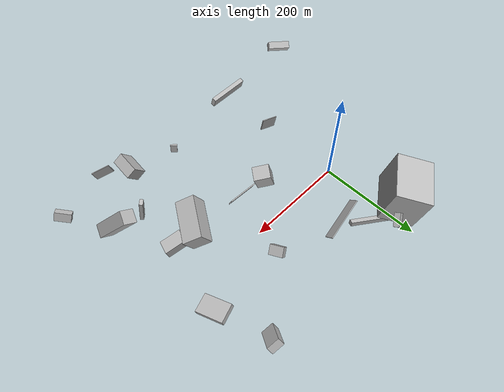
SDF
<sdf version="1.6">
 <world name="default">
  <scene>
   <sky><clouds><speed>12</speed></clouds></sky>
   <ambient>0.4 0.4 0.4 1</ambient>
   <background>0.7 0.7 0.7 1</background>
   <shadows>1</shadows>
  </scene>
  <gravity>0 0 -9.8066</gravity>
  <magnetic_field>6e-06 2.3e-05 -4.2e-05</magnetic_field>
  <physics default="0" name="default_physics" type="ode">
   <ode>
    <solver>
     <type>quick</type>
     <iters>10</iters>
     <sor>1.0</sor>
     <use_dynamic_moi_rescaling>0</use_dynamic_moi_rescaling>
    </solver>
    <constraints>
     <cfm>0</cfm>
     <erp>0.2</erp>
     <contact_max_correcting_vel>100</contact_max_correcting_vel>
     <contact_surface_layer>0.001</contact_surface_layer>
    </constraints>
   </ode>
   <max_step_size>0.004</max_step_size>
   <real_time_factor>1</real_time_factor>
   <real_time_update_rate>250</real_time_update_rate>
  </physics>
  <light name="sun" type="directional">
   <pose>0 0 10 0 0 0</pose>
   <diffuse>0.8 0.8 0.8 1</diffuse>
   <specular>0.2 0.2 0.2 1</specular>
   <attenuation>
    <range>1000</range>
    <constant>0.9</constant>
    <linear>0.01</linear>
    <quadratic>0.001</quadratic>
   </attenuation>
   <direction>-0.5 0.1 -0.9</direction>
  </light>
  <model name="building_1">
   <static>0</static>
   <pose>18.604189638630377 -270.0084801657965 37.75572804535589 0.30387462638447327 -0.0481927165799514 3.1163604716716895</pose>
   <link name="link">
    <gravity>0</gravity>
    <pose>0 0 11.0 0 0 0</pose>
    <collision name="collision"><geometry><box><size>80 9 22</size></box></geometry></collision>
    <visual name="visual">
     <cast_shadows>0</cast_shadows>
     <geometry><box><size>80 9 22</size></box></geometry>
     <material>
      <script>
       <uri>model://HANNAS_wall/materials/scripts</uri>
       <uri>model://HANNAS_wall/materials/textures</uri>
       <name>vrc/HANNAS_wall</name>
      </script>
     </material>
    </visual>
   </link>
  </model>
  <model name="building_2">
   <static>0</static>
   <pose>30.688145117430764 197.96346014661495 150.86888458859363 1.3570878151469867 0.06663464740510784 0.5989259954072047</pose>
   <link name="link">
    <gravity>0</gravity>
    <pose>0 0 30.5 0 0 0</pose>
    <collision name="collision"><geometry><box><size>80 74 61</size></box></geometry></collision>
    <visual name="visual">
     <cast_shadows>0</cast_shadows>
     <geometry><box><size>80 74 61</size></box></geometry>
     <material>
      <script>
       <uri>model://HANNAS_wall/materials/scripts</uri>
       <uri>model://HANNAS_wall/materials/textures</uri>
       <name>vrc/HANNAS_wall</name>
      </script>
     </material>
    </visual>
   </link>
  </model>
  <model name="building_3">
   <static>0</static>
   <pose>240.6456983925743 60.61529015062554 69.1304467071159 -1.1534007134463742 -0.8415070122899688 0.014404276636370995</pose>
   <link name="link">
    <gravity>0</gravity>
    <pose>0 0 13.0 0 0 0</pose>
    <collision name="collision"><geometry><box><size>11 18 26</size></box></geometry></collision>
    <visual name="visual">
     <cast_shadows>0</cast_shadows>
     <geometry><box><size>11 18 26</size></box></geometry>
     <material>
      <script>
       <uri>model://HANNAS_wall/materials/scripts</uri>
       <uri>model://HANNAS_wall/materials/textures</uri>
       <name>vrc/HANNAS_wall</name>
      </script>
     </material>
    </visual>
   </link>
  </model>
  <model name="building_4">
   <static>0</static>
   <pose>378.05804633108556 -165.2748386116931 56.75683413762468 -0.6959533781683468 0.8408317383026904 -0.974673879627191</pose>
   <link name="link">
    <gravity>0</gravity>
    <pose>0 0 13.5 0 0 0</pose>
    <collision name="collision"><geometry><box><size>80 25 27</size></box></geometry></collision>
    <visual name="visual">
     <cast_shadows>0</cast_shadows>
     <geometry><box><size>80 25 27</size></box></geometry>
     <material>
      <script>
       <uri>model://HANNAS_wall/materials/scripts</uri>
       <uri>model://HANNAS_wall/materials/textures</uri>
       <name>vrc/HANNAS_wall</name>
      </script>
     </material>
    </visual>
   </link>
  </model>
  <model name="building_5">
   <static>0</static>
   <pose>284.7893810707567 -249.2874523724937 65.90239303720215 2.9458199483058385 -0.9151571844170147 0.08514235196801988</pose>
   <link name="link">
    <gravity>0</gravity>
    <pose>0 0 11.0 0 0 0</pose>
    <collision name="collision"><geometry><box><size>35 44 22</size></box></geometry></collision>
    <visual name="visual">
     <cast_shadows>0</cast_shadows>
     <geometry><box><size>35 44 22</size></box></geometry>
     <material>
      <script>
       <uri>model://HANNAS_wall/materials/scripts</uri>
       <uri>model://HANNAS_wall/materials/textures</uri>
       <name>vrc/HANNAS_wall</name>
      </script>
     </material>
    </visual>
   </link>
  </model>
  <model name="building_6">
   <static>0</static>
   <pose>269.06665822878904 -109.85784908698997 63.14248282486653 1.902361760057284 1.0381785404034445 2.8557191163802047</pose>
   <link name="link">
    <gravity>0</gravity>
    <pose>0 0 40.0 0 0 0</pose>
    <collision name="collision"><geometry><box><size>38 38 80</size></box></geometry></collision>
    <visual name="visual">
     <cast_shadows>0</cast_shadows>
     <geometry><box><size>38 38 80</size></box></geometry>
     <material>
      <script>
       <uri>model://HANNAS_wall/materials/scripts</uri>
       <uri>model://HANNAS_wall/materials/textures</uri>
       <name>vrc/HANNAS_wall</name>
      </script>
     </material>
    </visual>
   </link>
  </model>
  <model name="building_7">
   <static>0</static>
   <pose>342.47269009472393 -63.005780804954135 43.068845665374695 -1.666073401515065 -0.2996980115905921 2.855761567001935</pose>
   <link name="link">
    <gravity>0</gravity>
    <pose>0 0 13.5 0 0 0</pose>
    <collision name="collision"><geometry><box><size>40 16 27</size></box></geometry></collision>
    <visual name="visual">
     <cast_shadows>0</cast_shadows>
     <geometry><box><size>40 16 27</size></box></geometry>
     <material>
      <script>
       <uri>model://HANNAS_wall/materials/scripts</uri>
       <uri>model://HANNAS_wall/materials/textures</uri>
       <name>vrc/HANNAS_wall</name>
      </script>
     </material>
    </visual>
   </link>
  </model>
  <model name="building_8">
   <static>0</static>
   <pose>101.9159934510655 200.9609168994587 137.87758411553497 0.6820311299519702 -0.8234654093877971 -0.22915649580009487</pose>
   <link name="link">
    <gravity>0</gravity>
    <pose>0 0 11.5 0 0 0</pose>
    <collision name="collision"><geometry><box><size>10 10 23</size></box></geometry></collision>
    <visual name="visual">
     <cast_shadows>0</cast_shadows>
     <geometry><box><size>10 10 23</size></box></geometry>
     <material>
      <script>
       <uri>model://HANNAS_wall/materials/scripts</uri>
       <uri>model://HANNAS_wall/materials/textures</uri>
       <name>vrc/HANNAS_wall</name>
      </script>
     </material>
    </visual>
   </link>
  </model>
  <model name="building_9">
   <static>0</static>
   <pose>339.0298478660873 -270.61056714332847 65.87197125042805 1.7713322131411309 -1.123327893844555 -0.7863585861075301</pose>
   <link name="link">
    <gravity>0</gravity>
    <pose>0 0 1.0 0 0 0</pose>
    <collision name="collision"><geometry><box><size>18 37 2</size></box></geometry></collision>
    <visual name="visual">
     <cast_shadows>0</cast_shadows>
     <geometry><box><size>18 37 2</size></box></geometry>
     <material>
      <script>
       <uri>model://HANNAS_wall/materials/scripts</uri>
       <uri>model://HANNAS_wall/materials/textures</uri>
       <name>vrc/HANNAS_wall</name>
      </script>
     </material>
    </visual>
   </link>
  </model>
  <model name="building_10">
   <static>0</static>
   <pose>112.91844575121495 -53.76741730868886 47.53538090463881 -2.2337291274159448 1.186720224399533 -2.9025125833095666</pose>
   <link name="link">
    <gravity>0</gravity>
    <pose>0 0 16.0 0 0 0</pose>
    <collision name="collision"><geometry><box><size>47 27 32</size></box></geometry></collision>
    <visual name="visual">
     <cast_shadows>0</cast_shadows>
     <geometry><box><size>47 27 32</size></box></geometry>
     <material>
      <script>
       <uri>model://HANNAS_wall/materials/scripts</uri>
       <uri>model://HANNAS_wall/materials/textures</uri>
       <name>vrc/HANNAS_wall</name>
      </script>
     </material>
    </visual>
   </link>
  </model>
  <model name="building_11">
   <static>0</static>
   <pose>436.6672695449815 -266.65011679521575 37.5811105005821 -0.4329931712633271 1.0430514955658077 0.3730614236580791</pose>
   <link name="link">
    <gravity>0</gravity>
    <pose>0 0 7.0 0 0 0</pose>
    <collision name="collision"><geometry><box><size>17 31 14</size></box></geometry></collision>
    <visual name="visual">
     <cast_shadows>0</cast_shadows>
     <geometry><box><size>17 31 14</size></box></geometry>
     <material>
      <script>
       <uri>model://HANNAS_wall/materials/scripts</uri>
       <uri>model://HANNAS_wall/materials/textures</uri>
       <name>vrc/HANNAS_wall</name>
      </script>
     </material>
    </visual>
   </link>
  </model>
  <model name="building_12">
   <static>0</static>
   <pose>340.8051517729186 -160.03769101588412 52.25558678833531 -1.5758405711902939 0.08935144183954247 2.317187394967973</pose>
   <link name="link">
    <gravity>0</gravity>
    <pose>0 0 6.0 0 0 0</pose>
    <collision name="collision"><geometry><box><size>7 49 12</size></box></geometry></collision>
    <visual name="visual">
     <cast_shadows>0</cast_shadows>
     <geometry><box><size>7 49 12</size></box></geometry>
     <material>
      <script>
       <uri>model://HANNAS_wall/materials/scripts</uri>
       <uri>model://HANNAS_wall/materials/textures</uri>
       <name>vrc/HANNAS_wall</name>
      </script>
     </material>
    </visual>
   </link>
  </model>
  <model name="building_13">
   <static>0</static>
   <pose>365.84037237267296 66.48093948667297 74.92205302035771 -2.030527655350348 -1.2600740458496698 -0.837976489881569</pose>
   <link name="link">
    <gravity>0</gravity>
    <pose>0 0 16.5 0 0 0</pose>
    <collision name="collision"><geometry><box><size>9 52 33</size></box></geometry></collision>
    <visual name="visual">
     <cast_shadows>0</cast_shadows>
     <geometry><box><size>9 52 33</size></box></geometry>
     <material>
      <script>
       <uri>model://HANNAS_wall/materials/scripts</uri>
       <uri>model://HANNAS_wall/materials/textures</uri>
       <name>vrc/HANNAS_wall</name>
      </script>
     </material>
    </visual>
   </link>
  </model>
  <model name="building_14">
   <static>0</static>
   <pose>182.43758265213867 -67.00600293208723 36.84645638245855 -0.14469185533208254 -0.4324769613471923 -1.620153634275107</pose>
   <link name="link">
    <gravity>0</gravity>
    <pose>0 0 14.5 0 0 0</pose>
    <collision name="collision"><geometry><box><size>2 55 29</size></box></geometry></collision>
    <visual name="visual">
     <cast_shadows>0</cast_shadows>
     <geometry><box><size>2 55 29</size></box></geometry>
     <material>
      <script>
       <uri>model://HANNAS_wall/materials/scripts</uri>
       <uri>model://HANNAS_wall/materials/textures</uri>
       <name>vrc/HANNAS_wall</name>
      </script>
     </material>
    </visual>
   </link>
  </model>
  <model name="building_15">
   <static>0</static>
   <pose>53.23277416021925 135.62835347243558 24.701866979519323 0.1968522124248772 0.1874287584197051 -2.042946493211146</pose>
   <link name="link">
    <gravity>0</gravity>
    <pose>0 0 4.0 0 0 0</pose>
    <collision name="collision"><geometry><box><size>9 80 8</size></box></geometry></collision>
    <visual name="visual">
     <cast_shadows>0</cast_shadows>
     <geometry><box><size>9 80 8</size></box></geometry>
     <material>
      <script>
       <uri>model://HANNAS_wall/materials/scripts</uri>
       <uri>model://HANNAS_wall/materials/textures</uri>
       <name>vrc/HANNAS_wall</name>
      </script>
     </material>
    </visual>
   </link>
  </model>
  <model name="building_16">
   <static>0</static>
   <pose>-56.542073081391706 107.3574265243481 48.2557149602277 -1.533510142786585 -1.0366454018699554 -1.1748193758460783</pose>
   <link name="link">
    <gravity>0</gravity>
    <pose>0 0 37.0 0 0 0</pose>
    <collision name="collision"><geometry><box><size>35 2 74</size></box></geometry></collision>
    <visual name="visual">
     <cast_shadows>0</cast_shadows>
     <geometry><box><size>35 2 74</size></box></geometry>
     <material>
      <script>
       <uri>model://HANNAS_wall/materials/scripts</uri>
       <uri>model://HANNAS_wall/materials/textures</uri>
       <name>vrc/HANNAS_wall</name>
      </script>
     </material>
    </visual>
   </link>
  </model>
  <model name="building_17">
   <static>0</static>
   <pose>147.9883053369643 113.48095091826812 56.56610395466209 1.1901072956174314 -0.6500563423597752 -1.2014937981221336</pose>
   <link name="link">
    <gravity>0</gravity>
    <pose>0 0 40.0 0 0 0</pose>
    <collision name="collision"><geometry><box><size>2 22 80</size></box></geometry></collision>
    <visual name="visual">
     <cast_shadows>0</cast_shadows>
     <geometry><box><size>2 22 80</size></box></geometry>
     <material>
      <script>
       <uri>model://HANNAS_wall/materials/scripts</uri>
       <uri>model://HANNAS_wall/materials/textures</uri>
       <name>vrc/HANNAS_wall</name>
      </script>
     </material>
    </visual>
   </link>
  </model>
  <model name="building_18">
   <static>0</static>
   <pose>-64.03768538951539 -180.53886724115452 175.92385367105172 1.4123765207118075 -1.0222981191724185 1.07859038270458</pose>
   <link name="link">
    <gravity>0</gravity>
    <pose>0 0 19.5 0 0 0</pose>
    <collision name="collision"><geometry><box><size>14 13 39</size></box></geometry></collision>
    <visual name="visual">
     <cast_shadows>0</cast_shadows>
     <geometry><box><size>14 13 39</size></box></geometry>
     <material>
      <script>
       <uri>model://HANNAS_wall/materials/scripts</uri>
       <uri>model://HANNAS_wall/materials/textures</uri>
       <name>vrc/HANNAS_wall</name>
      </script>
     </material>
    </visual>
   </link>
  </model>
  <model name="building_19">
   <static>0</static>
   <pose>191.2480130718477 -244.88838268887645 20.33044965519473 0.16254347816274142 0.036780937873028705 2.397577841461495</pose>
   <link name="link">
    <gravity>0</gravity>
    <pose>0 0 12.5 0 0 0</pose>
    <collision name="collision"><geometry><box><size>13 3 25</size></box></geometry></collision>
    <visual name="visual">
     <cast_shadows>0</cast_shadows>
     <geometry><box><size>13 3 25</size></box></geometry>
     <material>
      <script>
       <uri>model://HANNAS_wall/materials/scripts</uri>
       <uri>model://HANNAS_wall/materials/textures</uri>
       <name>vrc/HANNAS_wall</name>
      </script>
     </material>
    </visual>
   </link>
  </model>
  <model name="building_20">
   <static>0</static>
   <pose>353.0611282995191 161.6975263291496 95.00824485023712 0.6450008520864943 0.7001409199028288 1.8170870657430733</pose>
   <link name="link">
    <gravity>0</gravity>
    <pose>0 0 21.5 0 0 0</pose>
    <collision name="collision"><geometry><box><size>13 22 43</size></box></geometry></collision>
    <visual name="visual">
     <cast_shadows>0</cast_shadows>
     <geometry><box><size>13 22 43</size></box></geometry>
     <material>
      <script>
       <uri>model://HANNAS_wall/materials/scripts</uri>
       <uri>model://HANNAS_wall/materials/textures</uri>
       <name>vrc/HANNAS_wall</name>
      </script>
     </material>
    </visual>
   </link>
  </model>
  <model name="building_21">
   <static>0</static>
   <pose>10.097547354875559 -156.36255136161014 31.020381155391263 1.4529570100328817 -1.2910903646034115 3.1246230691879906</pose>
   <link name="link">
    <gravity>0</gravity>
    <pose>0 0 1.0 0 0 0</pose>
    <collision name="collision"><geometry><box><size>23 36 2</size></box></geometry></collision>
    <visual name="visual">
     <cast_shadows>0</cast_shadows>
     <geometry><box><size>23 36 2</size></box></geometry>
     <material>
      <script>
       <uri>model://HANNAS_wall/materials/scripts</uri>
       <uri>model://HANNAS_wall/materials/textures</uri>
       <name>vrc/HANNAS_wall</name>
      </script>
     </material>
    </visual>
   </link>
  </model>
  <model name="building_22">
   <static>0</static>
   <pose>283.83372496746614 -55.39542924838559 40.31052483270058 -1.5616603817493975 -0.15188344660599223 -0.8196103659545855</pose>
   <link name="link">
    <gravity>0</gravity>
    <pose>0 0 1.0 0 0 0</pose>
    <collision name="collision"><geometry><box><size>2 26 2</size></box></geometry></collision>
    <visual name="visual">
     <cast_shadows>0</cast_shadows>
     <geometry><box><size>2 26 2</size></box></geometry>
     <material>
      <script>
       <uri>model://HANNAS_wall/materials/scripts</uri>
       <uri>model://HANNAS_wall/materials/textures</uri>
       <name>vrc/HANNAS_wall</name>
      </script>
     </material>
    </visual>
   </link>
  </model>
 </world>
</sdf>
